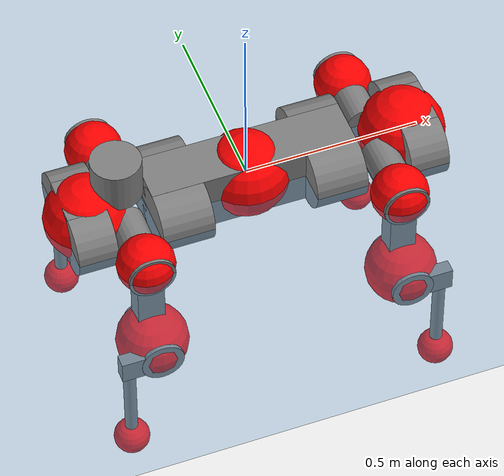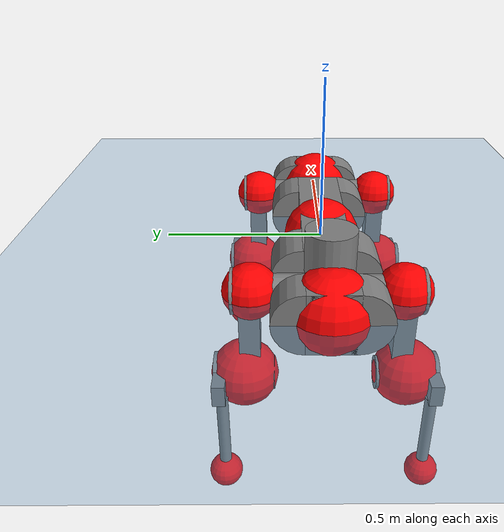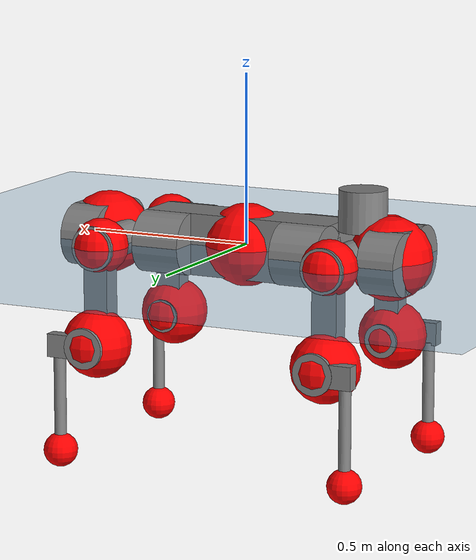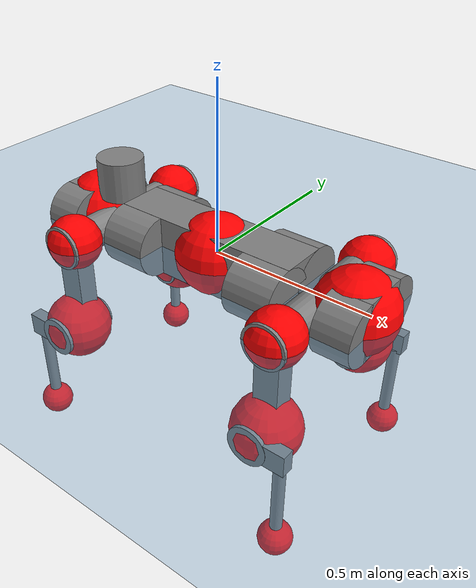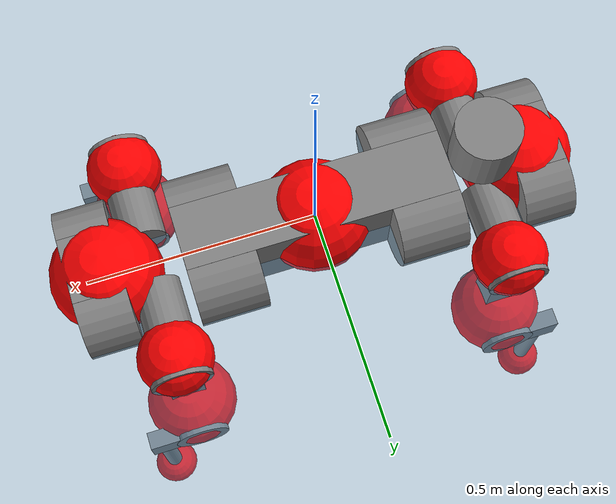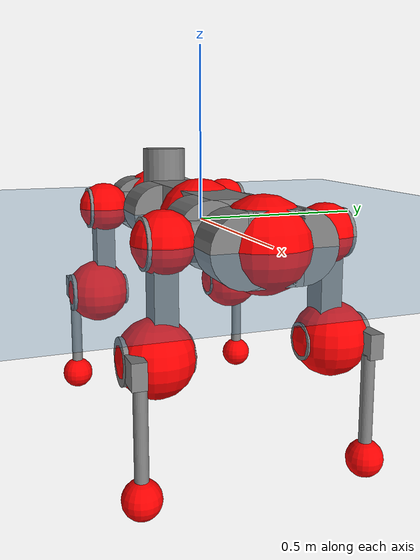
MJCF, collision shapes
<mujoco model="anymal_c">
  <compiler angle="radian" assetdir="assets" balanceinertia="true" inertiafromgeom="false"/>

  <option timestep="0.005" density="1.2" viscosity="2e-05"/>

  <size nkey="1"/>

  <visual>
    <quality shadowsize="8192"/>
    <map shadowclip="0.5"/>
  </visual>

  <default>
    <default class="/">
      <material specular="0" shininess="0.25"/>
      <geom contype="0" conaffinity="0" group="1" solref="-1000 -80"/>
      <site size="0.01 0.005 0.005" group="5"/>
      <general forcelimited="true" forcerange="-80 80" biastype="affine" gainprm="80" biasprm="0 -80 -2"/>
      <default class="anymal_c">
        <joint armature="0.01" damping="0.01" frictionloss="0.1"/>
        <default class="visual">
          <geom type="mesh" group="2"/>
          <default class="visual_zflip"/>
        </default>
        <default class="collision">
          <geom type="cylinder" group="3"/>
          <default class="foot">
            <geom size="0.03 0 0" type="sphere" condim="6" priority="1" friction="0.8 0.02 0.01" solimp="0.015 1 0.03"/>
          </default>
        </default>
      </default>
      <default class="reward_collision_sphere">
        <geom group="5" rgba="1 0 0 1"/>
      </default>
    </default>
  </default>

  <asset>
    <texture type="skybox" colorspace="auto" name="//unnamed_texture_0" builtin="gradient" rgb1="0.95 0.95 0.95" rgb2="0.95 0.95 0.95" width="100" height="600"/>
    <texture type="2d" colorspace="auto" name="texplane" builtin="checker" rgb1="0.345 0.575 0.748" rgb2="0.345 0.575 0.748" markrgb="1 1 1" width="512" height="512"/>
    <texture type="2d" colorspace="linear" name="base" file="base.png"/>
    <texture type="2d" colorspace="linear" name="top_shell" file="top_shell.png"/>
    <texture type="2d" colorspace="linear" name="bottom_shell" file="bottom_shell.png"/>
    <texture type="2d" colorspace="linear" name="remote" file="remote.png"/>
    <texture type="2d" colorspace="linear" name="hatch" file="hatch.png"/>
    <texture type="2d" colorspace="linear" name="handle" file="handle.png"/>
    <texture type="2d" colorspace="linear" name="face" file="face.png"/>
    <texture type="2d" colorspace="linear" name="battery" file="battery.png"/>
    <texture type="2d" colorspace="linear" name="lidar_cage" file="lidar_cage.png"/>
    <texture type="2d" colorspace="linear" name="depth_camera" file="depth_camera.png"/>
    <texture type="2d" colorspace="linear" name="wide_angle_camera" file="wide_angle_camera.png"/>
    <texture type="2d" colorspace="linear" name="lidar" file="lidar.png"/>
    <texture type="2d" colorspace="linear" name="drive" file="drive.png"/>
    <texture type="2d" colorspace="linear" name="hip_l" file="hip_l.png"/>
    <texture type="2d" colorspace="linear" name="shank_l" file="shank_l.png"/>
    <texture type="2d" colorspace="linear" name="foot" file="foot.png"/>
    <texture type="2d" colorspace="linear" name="thigh" file="thigh.png"/>
    <texture type="2d" colorspace="linear" name="shank_r" file="shank_r.png"/>
    <texture type="2d" colorspace="linear" name="hip_r" file="hip_r.png"/>
    <material name="MatPlane" class="/" texture="texplane" texuniform="true" texrepeat="2 2" specular="0.9" shininess="0.5"/>
    <material name="black_plastic" class="/" rgba="0.007 0.007 0.007 1"/>
    <material name="green" class="/" rgba="0.052 0.178 0.033 1"/>
    <material name="red" class="/" rgba="0.178 0.006 0.005 1"/>
    <material name="yellow" class="/" rgba="0.178 0.119 0.006 1"/>
    <material name="lwl" class="/" rgba="0.8 0.8 0.8 1"/>
    <material name="base" class="/" texture="base"/>
    <material name="top_shell" class="/" texture="top_shell"/>
    <material name="bottom_shell" class="/" texture="bottom_shell"/>
    <material name="hip_l" class="/" texture="hip_l"/>
    <material name="thigh" class="/" texture="thigh"/>
    <material name="shank_l" class="/" texture="shank_l"/>
    <material name="foot" class="/" texture="foot"/>
    <material name="hip_r" class="/" texture="hip_r"/>
    <material name="shank" class="/" texture="shank_r"/>
    <material name="hatch" class="/" texture="hatch"/>
    <material name="remote" class="/" texture="remote"/>
    <material name="handle" class="/" texture="handle"/>
    <material name="face" class="/" texture="face"/>
    <material name="depth_camera" class="/" texture="depth_camera"/>
    <material name="wide_angle_camera" class="/" texture="wide_angle_camera"/>
    <material name="battery" class="/" texture="battery"/>
    <material name="lidar_cage" class="/" texture="lidar_cage"/>
    <material name="lidar" class="/" texture="lidar"/>
    <material name="drive" class="/" texture="drive"/>
    <mesh name="base_0" class="/" file="base_0.obj"/>
    <mesh name="base_1" class="/" file="base_1.obj"/>
    <mesh name="base_2" class="/" file="base_2.obj"/>
    <mesh name="base_3" class="/" file="base_3.obj"/>
    <mesh name="base_4" class="/" file="base_4.obj"/>
    <mesh name="base_5" class="/" file="base_5.obj"/>
    <mesh name="top_shell" class="/" file="top_shell.obj"/>
    <mesh name="bottom_shell" class="/" file="bottom_shell.obj"/>
    <mesh name="remote" class="/" file="remote.obj"/>
    <mesh name="handle" class="/" file="handle.obj"/>
    <mesh name="face" class="/" file="face.obj"/>
    <mesh name="wide_angle_camera" class="/" file="wide_angle_camera.obj"/>
    <mesh name="depth_camera" class="/" file="depth_camera.obj"/>
    <mesh name="battery" class="/" file="battery.obj"/>
    <mesh name="lidar_cage" class="/" file="lidar_cage.obj"/>
    <mesh name="lidar" class="/" file="lidar.obj"/>
    <mesh name="drive" class="/" file="drive.obj"/>
    <mesh name="hip_l" class="/" file="hip_l.obj"/>
    <mesh name="thigh" class="/" file="thigh.obj"/>
    <mesh name="shank_l" class="/" file="shank_l.obj"/>
    <mesh name="foot" class="/" file="foot.obj"/>
    <mesh name="hip_r" class="/" file="hip_r.obj"/>
    <mesh name="hatch" class="/" file="hatch.obj"/>
    <mesh name="shank_r" class="/" file="shank_r.obj"/>
  </asset>

  <worldbody>
    <geom name="floor" class="/" size="100 100 0.125" type="plane" group="0" material="MatPlane"/>
    <light name="toplight_shadow" class="/" pos="0 0 5" dir="0.0990148 0.0990148 -0.990148" type="directional" ambient="0.04 0.04 0.04" diffuse="0.55 0.55 0.55" specular="0.12 0.12 0.12"/>
    <light name="toplight_fill" class="/" pos="0 0 5" dir="0.0990148 0.0990148 -0.990148" type="directional" castshadow="false" ambient="0.04 0.04 0.04" diffuse="0.3 0.3 0.3" specular="0.08 0.08 0.08"/>
    <body name="trunk" childclass="anymal_c" pos="7.37101e-05 -0.00280822 -0.00149264" quat="0.999999 0.000122751 -0.00116467 -0.000769089">
      <inertial pos="-0.000537817 -0.000863632 0.0515426" quat="0.500289 0.50201 0.489307 0.508208" mass="20.2471" diaginertia="0.664464 0.700588 0.220956"/>
      <joint name="//unnamed_joint_0" type="free" armature="0" damping="0" frictionloss="0"/>
      <geom name="//unnamed_geom_1" class="visual" material="green" mesh="base_0"/>
      <geom name="//unnamed_geom_2" class="visual" material="yellow" mesh="base_1"/>
      <geom name="//unnamed_geom_3" class="visual" material="red" mesh="base_2"/>
      <geom name="//unnamed_geom_4" class="visual" material="black_plastic" mesh="base_3"/>
      <geom name="//unnamed_geom_5" class="visual" material="lwl" mesh="base_4"/>
      <geom name="//unnamed_geom_6" class="visual" material="base" mesh="base_5"/>
      <geom name="trunk_1" class="collision" size="0.293036 0.0707329 0.0909423" type="box"/>
      <geom name="trunk_2" class="collision" size="0.0909423 0.0732591" pos="0.21998 0.0714606 0" quat="0.707107 0 0.707107 0"/>
      <geom name="trunk_3" class="collision" size="0.0909423 0.0732591" pos="-0.21998 0.0714606 0" quat="0.707107 0 0.707107 0"/>
      <geom name="trunk_4" class="collision" size="0.0909423 0.0732591" pos="0.21998 -0.0714606 0" quat="0.707107 0 0.707107 0"/>
      <geom name="trunk_5" class="collision" size="0.0909423 0.0732591" pos="-0.21998 -0.0714606 0" quat="0.707107 0 0.707107 0"/>
      <geom name="//unnamed_geom_12" class="visual" material="top_shell" mesh="top_shell"/>
      <geom name="//unnamed_geom_13" class="visual" material="bottom_shell" mesh="bottom_shell"/>
      <geom name="//unnamed_geom_14" class="visual" material="remote" mesh="remote"/>
      <geom name="//unnamed_geom_15" class="visual" material="handle" mesh="handle"/>
      <geom name="//unnamed_geom_16" class="visual" pos="0.419226 0 0" quat="1 0 0 0" material="face" mesh="face"/>
      <geom name="trunk_6" class="collision" size="0.0555759 0.0707329 0.0909423" pos="0.474853 0 0" type="box"/>
      <geom name="//unnamed_geom_18" class="collision" size="0.0909423 0.0555759" pos="0.474853 0.0714606 0" quat="0.707107 0 0.707107 0"/>
      <geom name="//unnamed_geom_19" class="collision" size="0.0909423 0.0555759" pos="0.474853 -0.0714606 0" quat="0.707107 0 0.707107 0"/>
      <geom name="//unnamed_geom_20" class="visual" pos="0.466913 0 -0.0290818" quat="0.965926 0 0.258819 0" material="depth_camera" mesh="depth_camera"/>
      <geom name="//unnamed_geom_21" class="visual" pos="0.518849 0 0.0149572" material="wide_angle_camera" mesh="wide_angle_camera"/>
      <geom name="//unnamed_geom_22" class="visual_zflip" pos="-0.419226 0 0" quat="0 0 0 1" material="face" mesh="face"/>
      <geom name="trunk_7" class="collision" size="0.0555759 0.0707329 0.0909423" pos="-0.474853 0 0" quat="0 0 0 1" type="box"/>
      <geom name="//unnamed_geom_24" class="collision" size="0.0909423 0.0555759" pos="-0.474853 -0.0714606 0" quat="0 -0.707107 0 0.707107"/>
      <geom name="//unnamed_geom_25" class="collision" size="0.0909423 0.0555759" pos="-0.474853 0.0714606 0" quat="0 -0.707107 0 0.707107"/>
      <geom name="//unnamed_geom_26" class="visual" pos="-0.466913 0 -0.0290818" quat="0 -0.258819 0 0.965926" material="depth_camera" mesh="depth_camera"/>
      <geom name="//unnamed_geom_27" class="visual_zflip" pos="-0.518849 0 0.0149572" quat="0 0 0 1" material="wide_angle_camera" mesh="wide_angle_camera"/>
      <geom name="//unnamed_geom_28" class="visual" material="battery" mesh="battery"/>
      <geom name="//unnamed_geom_29" class="visual" pos="0 0.0781791 0.0291183" quat="0.683013 -0.183013 0.183013 0.683013" material="depth_camera" mesh="depth_camera"/>
      <geom name="//unnamed_geom_30" class="visual" pos="0 -0.0781791 0.0291183" quat="0.683013 0.183013 0.183013 -0.683013" material="depth_camera" mesh="depth_camera"/>
      <geom name="//unnamed_geom_31" class="visual" pos="-0.36815 0 0.073437" quat="1 0 0 0" material="lidar_cage" mesh="lidar_cage"/>
      <geom name="trunk_8" class="collision" size="0.0707329 0.0606282" pos="-0.36815 0 0.133386"/>
      <geom name="//unnamed_geom_33" class="visual" pos="-0.36815 3.71826e-06 0.142078" quat="0.707107 0 0 -0.707107" material="lidar" mesh="lidar"/>
      <geom name="//unnamed_geom_34" class="visual" pos="0.303319 0.106162 3.74716e-10" quat="0.258819 0.965926 0 0" material="drive" mesh="drive"/>
      <geom name="//unnamed_geom_35" class="visual" pos="0.303319 -0.106162 -3.74716e-10" quat="0.258819 -0.965926 0 0" material="drive" mesh="drive"/>
      <geom name="//unnamed_geom_36" class="visual" pos="-0.303319 0.106162 -3.74716e-10" quat="0 0 0.965926 -0.258819" material="drive" mesh="drive"/>
      <geom name="//unnamed_geom_37" class="visual" pos="-0.303319 -0.106162 3.74716e-10" quat="0 0 -0.965926 -0.258819" material="drive" mesh="drive"/>
      <geom name="//unnamed_geom_38" class="visual" pos="0.117323 0 0.0729374" quat="1 0 0 0" material="hatch" mesh="hatch"/>
      <geom name="//unnamed_geom_39" class="reward_collision_sphere" size="0.121256"/>
      <geom name="//unnamed_geom_40" class="reward_collision_sphere" size="0.121256" pos="0.455131 0 0"/>
      <geom name="//unnamed_geom_41" class="reward_collision_sphere" size="0.121256" pos="-0.455131 0 0"/>
      <site name="imu" pos="0.256287 0.00353217 0.0412746" size="0.0101047"/>
      <camera name="track" pos="0 -2.04173 0" quat="0.707107 0.707107 0 0" mode="trackcom"/>
      <camera name="ego_camera" pos="0.455131 0 -0.0399657" quat="-0.5 -0.5 0.5 0.5"/>
      <body name="LF_HIP" pos="0.30274 0.106927 0.00182541" quat="0.258762 0.965941 0.000440697 0.000539554">
        <inertial pos="0.0574575 -0.0177478 -0.00769231" quat="-0.128492 0.709548 -0.135394 0.679485" mass="2.86304" diaginertia="0.00630241 0.00530121 0.00332672"/>
        <joint name="LF_HAA" pos="0 0 0" axis="0.999911 -0.00886498 -0.00996559" stiffness="0.00548172" range="-0.773229 0.48911" armature="0.0105252" damping="0.00505251" frictionloss="0.0996279"/>
        <geom name="//unnamed_geom_42" class="visual" pos="0 2.20428e-05 -3.62052e-06" quat="0.258819 -0.965926 0 0" material="hip_l" mesh="hip_l"/>
        <geom name="//unnamed_geom_43" class="visual" pos="0.0605829 -0.073526 -0.0422896" quat="0.183013 -0.683013 0.683013 0.183013" material="drive" mesh="drive"/>
        <geom name="//unnamed_geom_44" class="collision" size="0.0505235 0.0707329" pos="0.0605829 -0.0122093 -0.00689908" quat="-0.353553 -0.612372 0.612372 -0.353553"/>
        <body name="LF_THIGH" pos="0.0631405 -0.071438 -0.0402428" quat="0.183149 -0.683071 0.682988 0.182752">
          <inertial pos="0.031287 0.000685647 -0.245183" quat="0.994365 -0.00690748 -0.0729102 0.0766469" mass="3.28897" diaginertia="0.0313728 0.0336974 0.0041838"/>
          <joint name="LF_HFE" pos="0 0 0" axis="0.999903 -0.0127173 -0.00568519" stiffness="0.0128398" range="-3.19929 3.10939" armature="0.0104903" damping="0.00533235" frictionloss="0.0870184"/>
          <geom name="//unnamed_geom_45" class="visual" pos="-0.000188302 -2.9672e-07 0" quat="0.707107 0 0 -0.707107" material="thigh" mesh="thigh"/>
          <geom name="//unnamed_geom_46" class="collision" size="0.0656806 0.0404188" pos="0.0404561 0 0" quat="0.5 0.5 -0.5 -0.5"/>
          <geom name="//unnamed_geom_47" class="collision" size="0.0378926 0.0303141 0.142794" pos="0.030342 0 -0.141193" quat="0.707107 0 0 -0.707107" type="box"/>
          <geom name="//unnamed_geom_48" class="visual" pos="0.101444 0 -0.284756" quat="1 0 0 0" material="drive" mesh="drive"/>
          <geom name="//unnamed_geom_49" class="collision" size="0.0505235 0.0707329" pos="0.0306455 0 -0.284756" quat="0.707107 0 0.707107 0"/>
          <geom name="//unnamed_geom_50" class="reward_collision_sphere" size="0.0808376" pos="0.025285 0 0"/>
          <body name="LF_SHANK" pos="0.101429 6.53645e-05 -0.283638" quat="1 0.000310996 0.000450511 -0.000107161">
            <inertial pos="0.00364877 -0.0653048 -0.0830194" quat="0.993541 -0.109642 0.00537605 -0.0287318" mass="0.598577" diaginertia="0.0103404 0.0100665 0.00108746"/>
            <joint name="LF_KFE" pos="0 0 0" axis="0.999987 0.00518149 0.000238685" stiffness="0.00878932" range="-3.12732 3.18933" armature="0.00860066" damping="0" frictionloss="0.109386"/>
            <geom name="//unnamed_geom_51" class="visual" pos="-6.14011e-05 -0.000327394 0" quat="0.707107 0 0 -0.707107" material="shank_l" mesh="shank_l"/>
            <geom name="LF_kfe_act" class="collision" size="0.0606282 0.0202094" pos="0.020228 0 0" quat="0.5 0.5 -0.5 -0.5"/>
            <geom name="//unnamed_geom_53" class="collision" size="0.058101 0.0341034 0.0191989" pos="0.020228 -0.0586988 0" quat="0.5 0.5 -0.5 -0.5" type="box"/>
            <geom name="//unnamed_geom_54" class="visual" pos="0.0131988 -0.0898906 -0.33768" quat="0.382683 0 0 -0.92388" material="foot" mesh="foot"/>
            <geom name="LF_calf" class="collision" size="0.0176832 0.142731" pos="0.0131988 -0.0897851 -0.16884" quat="0.707107 0 0 -0.707107"/>
            <geom name="LF_foot" class="foot" size="0.0280354" pos="0.0131988 -0.0897851 -0.3152" quat="0.707107 0 0 -0.707107"/>
            <geom name="//unnamed_geom_57" class="reward_collision_sphere" size="0.101047" pos="-0.0505701 0 0"/>
            <geom name="//unnamed_geom_58" class="reward_collision_sphere" size="0.0505235" pos="0.0131988 -0.0897851 -0.3152"/>
            <site name="LF_foot" class="foot" pos="0.0131988 -0.0897851 -0.3152" quat="0.707107 0 0 -0.707107" size="0.0101047"/>
          </body>
        </body>
      </body>
      <body name="RF_HIP" pos="0.302746 -0.109325 0.00145357" quat="0.258309 -0.966062 8.79224e-05 -0.000178757">
        <inertial pos="0.0580461 0.0183959 -0.010673" quat="0.139394 0.684142 0.126209 0.704692" mass="2.78689" diaginertia="0.00597325 0.00546488 0.00334326"/>
        <joint name="RF_HAA" pos="0 0 0" axis="0.999874 0.0156262 -0.00286568" range="-0.512381 0.763269" armature="0.00887689" damping="0.00128108" frictionloss="0.107249"/>
        <geom name="//unnamed_geom_59" class="visual" pos="0 -2.20427e-05 -3.62051e-06" quat="0.258819 0.965926 0 0" material="hip_r" mesh="hip_r"/>
        <geom name="//unnamed_geom_60" class="visual" pos="0.0605829 0.073526 -0.0422896" quat="0.183013 0.683013 0.683013 -0.183013" material="drive" mesh="drive"/>
        <geom name="//unnamed_geom_61" class="collision" size="0.0505235 0.0707329" pos="0.0605829 0.0122093 -0.00689908" quat="-0.353553 0.612372 0.612372 0.353553"/>
        <body name="RF_THIGH" pos="0.0586852 0.072522 -0.0426796" quat="0.182681 0.683162 0.682896 -0.183225">
          <inertial pos="0.033937 -0.00291698 -0.243922" quat="0.992084 -0.00268496 -0.0789942 0.0975793" mass="3.21485" diaginertia="0.0308478 0.0331333 0.00416445"/>
          <joint name="RF_HFE" pos="0 0 0" axis="0.99995 0.00968382 -0.00248871" stiffness="0.000444111" range="-3.13394 3.17638" armature="0.00926927" damping="0.019863" frictionloss="0.0867211"/>
          <geom name="//unnamed_geom_62" class="visual" pos="-0.000188302 -2.9672e-07 0" quat="0.707107 0 0 -0.707107" material="thigh" mesh="thigh"/>
          <geom name="//unnamed_geom_63" class="collision" size="0.0656806 0.0404188" pos="0.0404561 0 0" quat="0.5 0.5 0.5 0.5"/>
          <geom name="//unnamed_geom_64" class="collision" size="0.0378926 0.0303141 0.142794" pos="0.030342 0 -0.141193" quat="0.707107 0 0 0.707107" type="box"/>
          <geom name="//unnamed_geom_65" class="visual" pos="0.101444 0 -0.284756" quat="1 0 0 0" material="drive" mesh="drive"/>
          <geom name="//unnamed_geom_66" class="collision" size="0.0505235 0.0707329" pos="0.0306455 0 -0.284756" quat="0.707107 0 0.707107 0"/>
          <geom name="//unnamed_geom_67" class="reward_collision_sphere" size="0.0808376" pos="0.025285 0 0"/>
          <body name="RF_SHANK" pos="0.0996663 0.00271679 -0.284217" quat="1 -9.50958e-05 5.21131e-05 -0.000155236">
            <inertial pos="0.00283953 0.0653512 -0.081339" quat="0.993975 0.108008 -0.00494315 0.0179638" mass="0.611435" diaginertia="0.0105647 0.0106901 0.00108469"/>
            <joint name="RF_KFE" pos="0 0 0" axis="0.999997 -0.00037282 0.00223289" range="-3.09083 3.15735" armature="0.0103061" damping="0.00345603" frictionloss="0.0910151"/>
            <geom name="//unnamed_geom_68" class="visual" pos="-6.14008e-05 0.000327393 0" quat="0.707107 0 0 0.707107" material="shank" mesh="shank_r"/>
            <geom name="RF_kfe_act" class="collision" size="0.0606282 0.0202094" pos="0.020228 0 0" quat="0.5 0.5 0.5 0.5"/>
            <geom name="//unnamed_geom_70" class="collision" size="0.058101 0.0341034 0.0191989" pos="0.020228 0.0586988 0" quat="0.5 0.5 0.5 0.5" type="box"/>
            <geom name="//unnamed_geom_71" class="visual" pos="0.0131988 0.0898906 -0.33768" quat="0.382683 0 0 0.92388" material="foot" mesh="foot"/>
            <geom name="RF_calf" class="collision" size="0.0176832 0.142731" pos="0.0131988 0.0897851 -0.16884" quat="0.707107 0 0 0.707107"/>
            <geom name="RF_foot" class="foot" size="0.0302375" pos="0.0131988 0.0897851 -0.3152" quat="0.707107 0 0 0.707107"/>
            <geom name="//unnamed_geom_74" class="reward_collision_sphere" size="0.101047" pos="-0.0505701 0 0"/>
            <geom name="//unnamed_geom_75" class="reward_collision_sphere" size="0.0505235" pos="0.0131988 0.0897851 -0.3152"/>
            <site name="RF_foot" class="foot" pos="0.0131988 0.0897851 -0.3152" quat="0.707107 0 0 0.707107" size="0.0101047"/>
          </body>
        </body>
      </body>
      <body name="LH_HIP" pos="-0.302916 0.109369 0.0035367" quat="-0.000270854 4.74576e-05 0.965769 -0.259402">
        <inertial pos="0.0576488 0.0147547 -0.00558015" quat="0.132709 0.6788 0.129837 0.710465" mass="2.77383" diaginertia="0.00602183 0.00513297 0.00330002"/>
        <joint name="LH_HAA" pos="0 0 0" axis="0.99996 -0.00824544 -0.00336166" stiffness="0.00637433" range="-0.448681 0.68741" armature="0.00983008" damping="0.0130526" frictionloss="0.114023"/>
        <geom name="//unnamed_geom_76" class="visual" pos="0 -2.20427e-05 -3.62051e-06" quat="-0.258819 -0.965926 0 0" material="hip_r" mesh="hip_r"/>
        <geom name="//unnamed_geom_77" class="visual" pos="0.0605829 0.073526 -0.0422896" quat="0.183013 0.683013 0.683013 -0.183013" material="drive" mesh="drive"/>
        <geom name="//unnamed_geom_78" class="collision" size="0.0505235 0.0707329" pos="0.0605829 0.0122093 -0.00689908" quat="-0.353553 0.612372 0.612372 0.353553"/>
        <body name="LH_THIGH" pos="0.0601265 0.0714925 -0.0419201" quat="0.183392 0.682523 0.683428 -0.182912">
          <inertial pos="0.0304147 0.000193145 -0.243415" quat="0.992648 0.00488084 -0.0752355 0.094692" mass="3.14032" diaginertia="0.0310129 0.034426 0.00427985"/>
          <joint name="LH_HFE" pos="0 0 0" axis="0.999998 -0.00195866 0.000535602" range="-3.12974 3.15829" armature="0.0115029" damping="0.0226697" frictionloss="0.0869584"/>
          <geom name="//unnamed_geom_79" class="visual" pos="-0.000188302 -2.9672e-07 0" quat="0.707107 0 0 -0.707107" material="thigh" mesh="thigh"/>
          <geom name="//unnamed_geom_80" class="collision" size="0.0656806 0.0404188" pos="0.0404561 0 0" quat="0.5 0.5 -0.5 -0.5"/>
          <geom name="//unnamed_geom_81" class="collision" size="0.0378926 0.0303141 0.142794" pos="0.030342 0 -0.141193" quat="0.707107 0 0 -0.707107" type="box"/>
          <geom name="//unnamed_geom_82" class="visual" pos="0.101444 0 -0.284756" quat="1 0 0 0" material="drive" mesh="drive"/>
          <geom name="//unnamed_geom_83" class="collision" size="0.0505235 0.0707329" pos="0.0306455 0 -0.284756" quat="0.707107 0 0.707107 0"/>
          <geom name="//unnamed_geom_84" class="reward_collision_sphere" size="0.0808376" pos="0.025285 0 0"/>
          <body name="LH_SHANK" pos="0.0994804 0.00123424 -0.281766" quat="0.999999 0.000306769 0.000419126 -0.00111749">
            <inertial pos="0.00590643 0.0647695 -0.0794919" quat="0.992764 0.116537 0.00276995 0.028832" mass="0.59408" diaginertia="0.0103555 0.0098676 0.00107574"/>
            <joint name="LH_KFE" pos="0 0 0" axis="0.999999 0.000382039 -0.00142875" stiffness="0.00550078" range="-3.12321 3.15124" armature="0.0104287" damping="0.0209378" frictionloss="0.0867547"/>
            <geom name="//unnamed_geom_85" class="visual" pos="-6.14008e-05 0.000327393 0" quat="-0.707107 0 0 -0.707107" material="shank" mesh="shank_r"/>
            <geom name="LH_kfe_act" class="collision" size="0.0606282 0.0202094" pos="0.020228 0 0" quat="0.5 0.5 -0.5 -0.5"/>
            <geom name="//unnamed_geom_87" class="collision" size="0.058101 0.0341034 0.0191989" pos="0.020228 0.0586988 0" quat="0.5 0.5 -0.5 -0.5" type="box"/>
            <geom name="//unnamed_geom_88" class="visual" pos="0.0131988 0.0898906 -0.33768" quat="-0.382683 0 0 -0.92388" material="foot" mesh="foot"/>
            <geom name="LH_calf" class="collision" size="0.0176832 0.142731" pos="0.0131988 0.0897851 -0.16884" quat="0.707107 0 0 -0.707107"/>
            <geom name="LH_foot" class="foot" size="0.0306665" pos="0.0131988 0.0897851 -0.3152" quat="0.707107 0 0 -0.707107"/>
            <geom name="//unnamed_geom_91" class="reward_collision_sphere" size="0.101047" pos="-0.0505701 0 0"/>
            <geom name="//unnamed_geom_92" class="reward_collision_sphere" size="0.0505235" pos="0.0131988 0.0897851 -0.3152"/>
            <site name="LH_foot" class="foot" pos="0.0131988 0.0897851 -0.3152" quat="0.707107 0 0 -0.707107" size="0.0101047"/>
          </body>
        </body>
      </body>
      <body name="RH_HIP" pos="-0.304052 -0.103899 0.000680602" quat="-2.51271e-05 -0.000219077 -0.96589 -0.258951">
        <inertial pos="0.0563536 -0.0171531 -0.00801221" quat="-0.12767 0.710061 -0.134313 0.679319" mass="2.78163" diaginertia="0.00599315 0.00536915 0.0031754"/>
        <joint name="RH_HAA" pos="0 0 0" axis="0.999991 -0.000429152 0.00431551" stiffness="0.00736345" range="-0.73106 0.547945" armature="0.0109194" damping="0.0102651" frictionloss="0.115405"/>
        <geom name="//unnamed_geom_93" class="visual" pos="0 2.20428e-05 -3.62052e-06" quat="-0.258819 0.965926 0 0" material="hip_l" mesh="hip_l"/>
        <geom name="//unnamed_geom_94" class="visual" pos="0.0605829 -0.073526 -0.0422896" quat="-0.183013 0.683013 -0.683013 -0.183013" material="drive" mesh="drive"/>
        <geom name="//unnamed_geom_95" class="collision" size="0.0505235 0.0707329" pos="0.0605829 -0.0122093 -0.00689908" quat="0.353553 0.612372 -0.612372 0.353553"/>
        <body name="RH_THIGH" pos="0.0576215 -0.0711466 -0.0424986" quat="-0.183115 0.683143 -0.682616 -0.183904">
          <inertial pos="0.0317921 -0.00266147 -0.244274" quat="0.993024 -0.0054275 -0.0825844 0.0839829" mass="3.24816" diaginertia="0.0326107 0.0328687 0.00405095"/>
          <joint name="RH_HFE" pos="0 0 0" axis="0.999997 -0.00109059 -0.00221604" stiffness="0.00867624" range="-3.1622 3.15091" armature="0.00962738" damping="0.019494" frictionloss="0.106335"/>
          <geom name="//unnamed_geom_96" class="visual" pos="-0.000188302 -2.9672e-07 0" quat="0.707107 0 0 -0.707107" material="thigh" mesh="thigh"/>
          <geom name="//unnamed_geom_97" class="collision" size="0.0656806 0.0404188" pos="0.0404561 0 0" quat="0.5 0.5 0.5 0.5"/>
          <geom name="//unnamed_geom_98" class="collision" size="0.0378926 0.0303141 0.142794" pos="0.030342 0 -0.141193" quat="0.707107 0 0 0.707107" type="box"/>
          <geom name="//unnamed_geom_99" class="visual" pos="0.101444 0 -0.284756" quat="1 0 0 0" material="drive" mesh="drive"/>
          <geom name="//unnamed_geom_100" class="collision" size="0.0505235 0.0707329" pos="0.0306455 0 -0.284756" quat="0.707107 0 0.707107 0"/>
          <geom name="//unnamed_geom_101" class="reward_collision_sphere" size="0.0808376" pos="0.025285 0 0"/>
          <body name="RH_SHANK" pos="0.103797 0.00115238 -0.283266" quat="1 -0.000158519 -0.000104704 9.07378e-05">
            <inertial pos="0.00280331 -0.0626151 -0.0812813" quat="0.992918 -0.11615 -0.000726499 -0.0249413" mass="0.628312" diaginertia="0.010924 0.010578 0.00112769"/>
            <joint name="RH_KFE" pos="0 0 0" axis="0.999963 -0.00795177 0.00322988" range="-3.09798 3.18642" armature="0.0104861" damping="0.0105252" frictionloss="0.115079"/>
            <geom name="//unnamed_geom_102" class="visual" pos="-6.14011e-05 -0.000327394 0" quat="0.707107 0 0 -0.707107" material="shank_l" mesh="shank_l"/>
            <geom name="RH_kfe_act" class="collision" size="0.0606282 0.0202094" pos="0.020228 0 0" quat="0.5 0.5 0.5 0.5"/>
            <geom name="//unnamed_geom_104" class="collision" size="0.058101 0.0341034 0.0191989" pos="0.020228 -0.0586988 0" quat="0.5 0.5 0.5 0.5" type="box"/>
            <geom name="//unnamed_geom_105" class="visual" pos="0.0131988 -0.0898906 -0.33768" quat="0.382683 0 0 -0.92388" material="foot" mesh="foot"/>
            <geom name="RH_calf" class="collision" size="0.0176832 0.142731" pos="0.0131988 -0.0897851 -0.16884" quat="0.707107 0 0 0.707107"/>
            <geom name="RH_foot" class="foot" size="0.0302227" pos="0.0131988 -0.0897851 -0.3152" quat="0.707107 0 0 0.707107"/>
            <geom name="//unnamed_geom_108" class="reward_collision_sphere" size="0.101047" pos="-0.0505701 0 0"/>
            <geom name="//unnamed_geom_109" class="reward_collision_sphere" size="0.0505235" pos="0.0131988 -0.0897851 -0.3152"/>
            <site name="RH_foot" class="foot" pos="0.0131988 -0.0897851 -0.3152" quat="0.707107 0 0 0.707107" size="0.0101047"/>
          </body>
        </body>
      </body>
    </body>
  </worldbody>

  <contact>
    <pair class="/" geom1="floor" geom2="LF_foot" name="//unnamed_contact_0"/>
    <pair class="/" geom1="floor" geom2="RF_foot" name="//unnamed_contact_1"/>
    <pair class="/" geom1="floor" geom2="LH_foot" name="//unnamed_contact_2"/>
    <pair class="/" geom1="floor" geom2="RH_foot" name="//unnamed_contact_3"/>
  </contact>

  <actuator>
    <general name="LF_HAA" class="/" joint="LF_HAA" forcerange="-89.9649 89.9649" gainprm="81.6254" biasprm="0 -81.6254 -2.20188"/>
    <general name="LF_HFE" class="/" joint="LF_HFE" forcerange="-80.2092 80.2092" gainprm="81.6254" biasprm="0 -81.6254 -2.20188"/>
    <general name="LF_KFE" class="/" joint="LF_KFE" forcerange="-77.6369 77.6369" gainprm="81.6254" biasprm="0 -81.6254 -2.20188"/>
    <general name="RF_HAA" class="/" joint="RF_HAA" forcerange="-73.1699 73.1699" gainprm="81.6254" biasprm="0 -81.6254 -2.20188"/>
    <general name="RF_HFE" class="/" joint="RF_HFE" forcerange="-80.7108 80.7108" gainprm="81.6254" biasprm="0 -81.6254 -2.20188"/>
    <general name="RF_KFE" class="/" joint="RF_KFE" forcerange="-72.9293 72.9293" gainprm="81.6254" biasprm="0 -81.6254 -2.20188"/>
    <general name="LH_HAA" class="/" joint="LH_HAA" forcerange="-77.7255 77.7255" gainprm="81.6254" biasprm="0 -81.6254 -2.20188"/>
    <general name="LH_HFE" class="/" joint="LH_HFE" forcerange="-80.3273 80.3273" gainprm="81.6254" biasprm="0 -81.6254 -2.20188"/>
    <general name="LH_KFE" class="/" joint="LH_KFE" forcerange="-87.1008 87.1008" gainprm="81.6254" biasprm="0 -81.6254 -2.20188"/>
    <general name="RH_HAA" class="/" joint="RH_HAA" forcerange="-73.8398 73.8398" gainprm="81.6254" biasprm="0 -81.6254 -2.20188"/>
    <general name="RH_HFE" class="/" joint="RH_HFE" forcerange="-87.7641 87.7641" gainprm="81.6254" biasprm="0 -81.6254 -2.20188"/>
    <general name="RH_KFE" class="/" joint="RH_KFE" forcerange="-86.4693 86.4693" gainprm="81.6254" biasprm="0 -81.6254 -2.20188"/>
  </actuator>

  <sensor>
    <gyro site="imu" name="imu_angular_velocity"/>
    <velocimeter site="imu" name="imu_linear_velocity"/>
    <framelinvel objtype="site" objname="LF_foot" name="LF_foot_global_linear_velocity"/>
    <framelinvel objtype="site" objname="RF_foot" name="RF_foot_global_linear_velocity"/>
    <framelinvel objtype="site" objname="LH_foot" name="LH_foot_global_linear_velocity"/>
    <framelinvel objtype="site" objname="RH_foot" name="RH_foot_global_linear_velocity"/>
  </sensor>

  <keyframe>
    <key name="home" qpos="0 0 0.55 1 0 0 0 0 0.4 -0.8 0 -0.4 0.8 0 -0.4 0.8 0 0.4 -0.8"/>
  </keyframe>
</mujoco>
